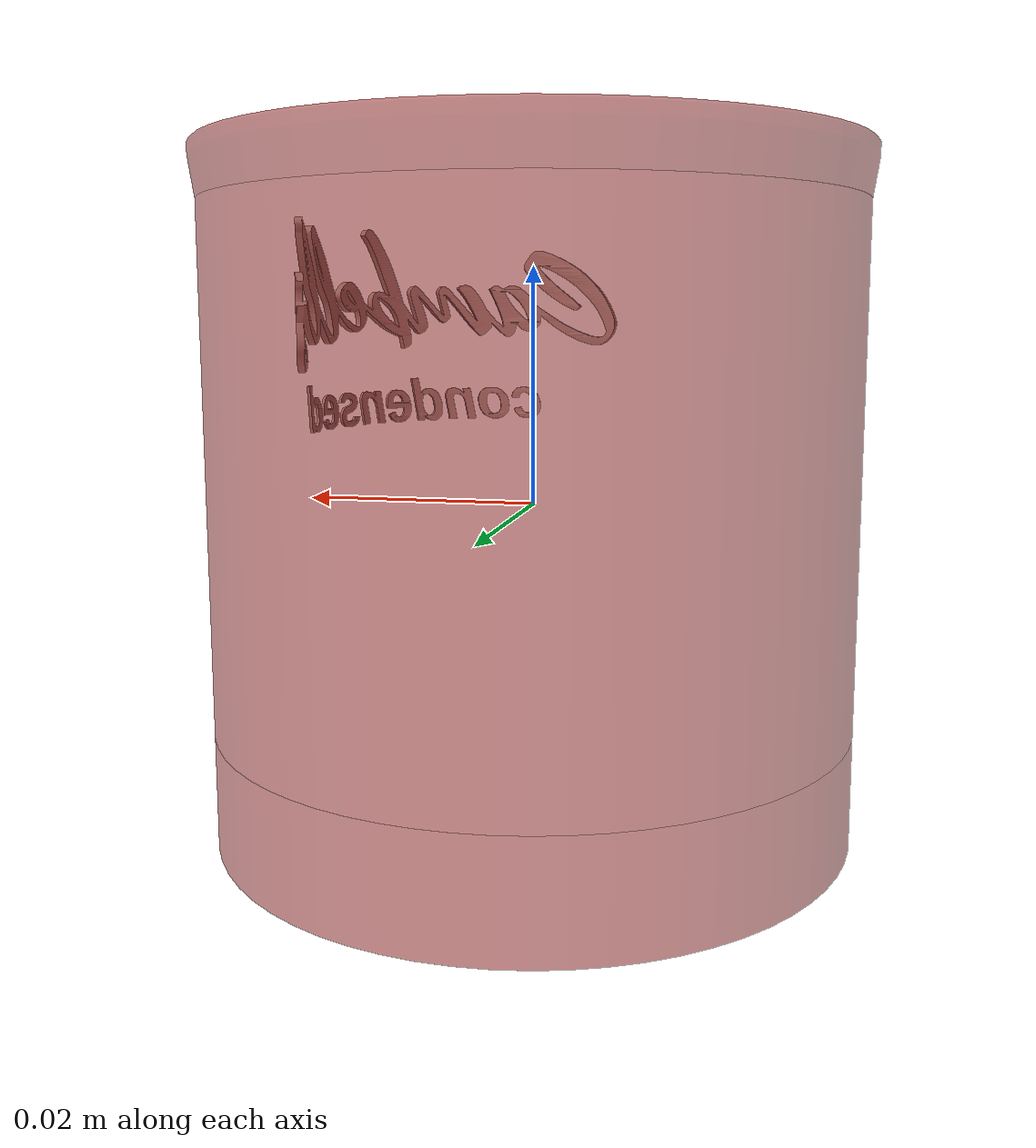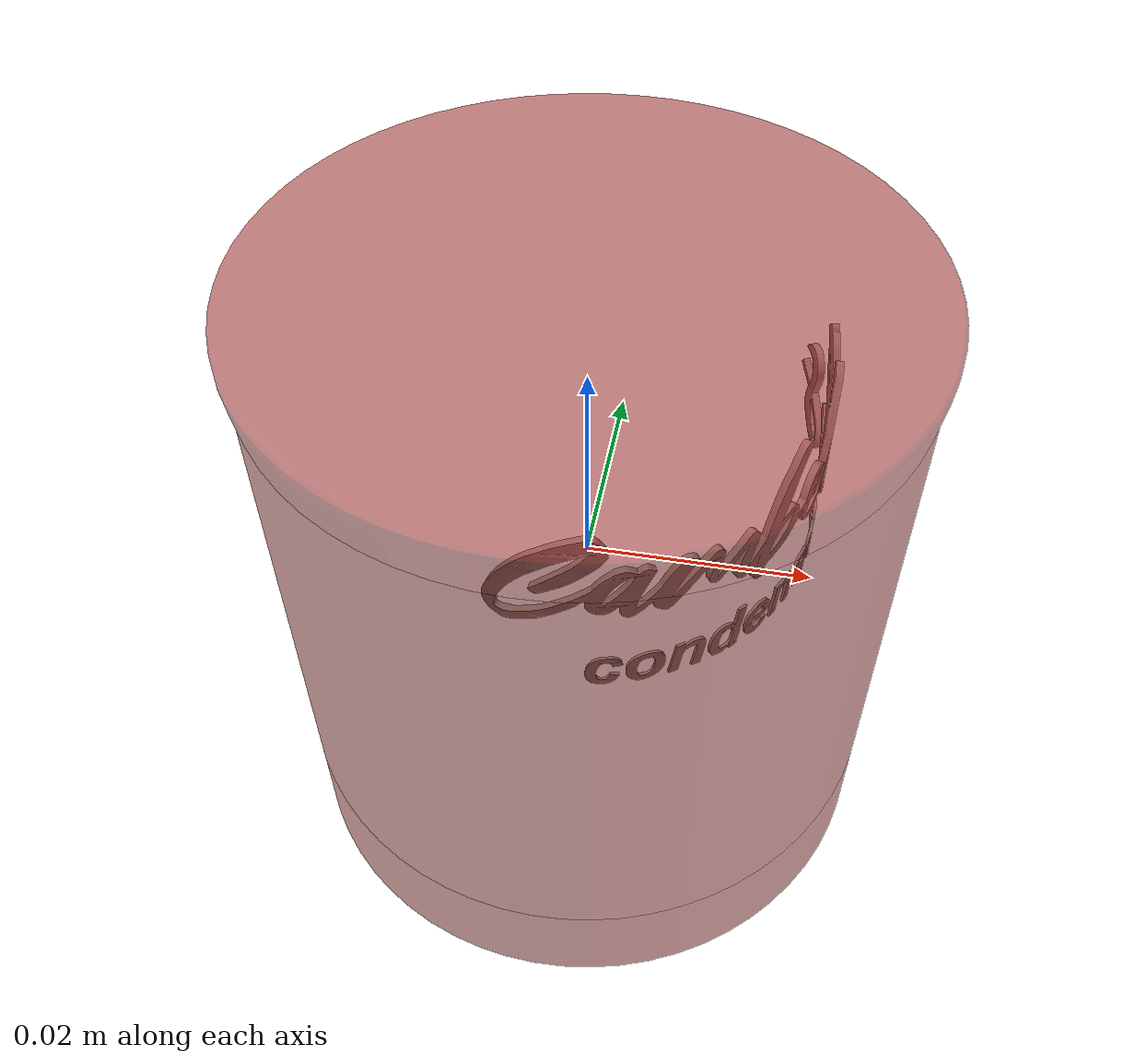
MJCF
<?xml version='1.0' encoding='utf-8'?>
<mujoco model="canned_food_0">
  <asset>
    <mesh file="visual/model_normalized_0.obj" name="model_normalized_0_vis" scale="0.058499999999999955 0.058499999999999955 0.058499999999999955" refquat="1.0 0.0 0.0 0.0" />
    <texture type="2d" name="image0" file="visual/image0.png" />
    <material name="01___Default.002" texture="image0" specular="0.5" shininess="0.25" />
    <mesh file="collision/collision_mesh_collision_0.obj" name="canned_collision_mesh_0" scale="0.058499999999999955 0.058499999999999955 0.058499999999999955" refquat="1.0 0.0 0.0 0.0" />
    <mesh file="collision/collision_mesh_collision_1.obj" name="canned_collision_mesh_1" scale="0.058499999999999955 0.058499999999999955 0.058499999999999955" refquat="1.0 0.0 0.0 0.0" />
    <mesh file="collision/collision_mesh_collision_2.obj" name="canned_collision_mesh_2" scale="0.058499999999999955 0.058499999999999955 0.058499999999999955" refquat="1.0 0.0 0.0 0.0" />
    <mesh file="collision/collision_mesh_collision_3.obj" name="canned_collision_mesh_3" scale="0.058499999999999955 0.058499999999999955 0.058499999999999955" refquat="1.0 0.0 0.0 0.0" />
  </asset>
  <default>
    <default class="region">
      <geom group="1" conaffinity="0" contype="0" rgba="0 1 0 0" mass="0" />
    </default>
    <default class="collision">
      <geom group="0" rgba="0.5 0 0 0.5" density="2100.738001740" />
    </default>
  </default>
  <worldbody>
    <body>
      <body name="object">
        <geom solimp="0.998 0.998 0.001" solref="0.001 1" density="210.073800174" friction="0.95 0.3 0.1" type="mesh" mesh="model_normalized_0_vis" conaffinity="0" contype="0" group="1" material="01___Default.002" />
        <geom class="region" name="reg_bbox" type="box" pos="0.0 0.0 0.0" size="0.027488767409999976 0.027488767409999976 0.029249999999999977" />
        <geom mesh="canned_collision_mesh_0" type="mesh" class="collision" />
        <geom mesh="canned_collision_mesh_1" type="mesh" class="collision" />
        <geom mesh="canned_collision_mesh_2" type="mesh" class="collision" />
        <geom mesh="canned_collision_mesh_3" type="mesh" class="collision" />
      </body>
    </body>
  </worldbody>
</mujoco>
